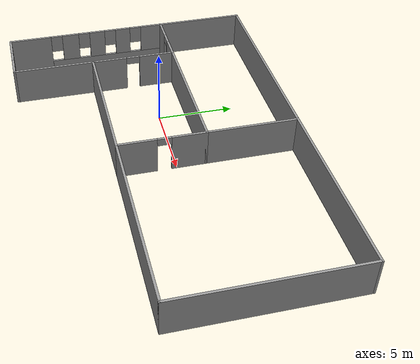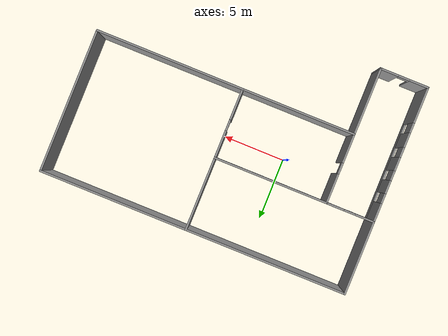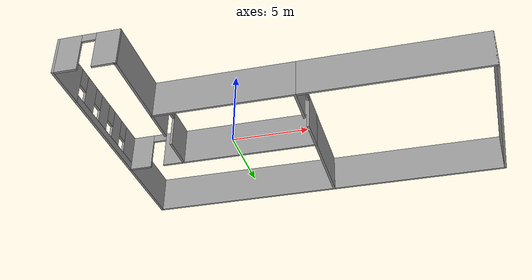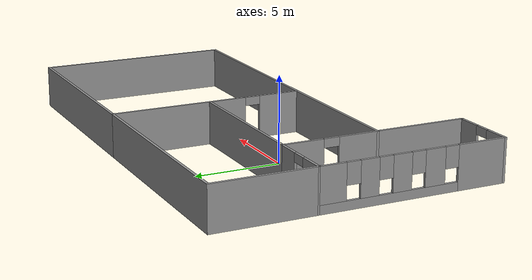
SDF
<?xml version='1.0'?>
<sdf version='1.7'>
  <model name='house'>
    <pose>4.49713 -0.687217 0 0 -0 0</pose>
    <link name='Wall_0'>
      <pose>-8.55 -0.25 0 0 -0 1.5708</pose>
      <visual name='Wall_0_Visual_0'>
        <pose>-1.67204 0 1.25 0 -0 0</pose>
        <geometry>
          <box>
            <size>2.40592 0.15 2.5</size>
          </box>
        </geometry>
        <material>
          <script>
            <uri>file://media/materials/scripts/gazebo.material</uri>
            <name>Gazebo/Grey</name>
          </script>
          <ambient>1 1 1 1</ambient>
        </material>
        <meta>
          <layer>0</layer>
        </meta>
      </visual>
      <collision name='Wall_0_Collision_0'>
        <geometry>
          <box>
            <size>2.40592 0.15 2.5</size>
          </box>
        </geometry>
        <pose>-1.67204 0 1.25 0 -0 0</pose>
      </collision>
      <visual name='Wall_0_Visual_1'>
        <pose>1.65296 0 1.25 0 -0 0</pose>
        <geometry>
          <box>
            <size>2.44408 0.15 2.5</size>
          </box>
        </geometry>
        <material>
          <script>
            <uri>file://media/materials/scripts/gazebo.material</uri>
            <name>Gazebo/Grey</name>
          </script>
          <ambient>1 1 1 1</ambient>
        </material>
        <meta>
          <layer>0</layer>
        </meta>
      </visual>
      <collision name='Wall_0_Collision_1'>
        <geometry>
          <box>
            <size>2.44408 0.15 2.5</size>
          </box>
        </geometry>
        <pose>1.65296 0 1.25 0 -0 0</pose>
      </collision>
      <visual name='Wall_0_Visual_2'>
        <pose>-0.01908 0 2.25 0 -0 0</pose>
        <geometry>
          <box>
            <size>0.9 0.15 0.5</size>
          </box>
        </geometry>
        <material>
          <script>
            <uri>file://media/materials/scripts/gazebo.material</uri>
            <name>Gazebo/Grey</name>
          </script>
          <ambient>1 1 1 1</ambient>
        </material>
        <meta>
          <layer>0</layer>
        </meta>
      </visual>
      <collision name='Wall_0_Collision_2'>
        <geometry>
          <box>
            <size>0.9 0.15 0.5</size>
          </box>
        </geometry>
        <pose>-0.01908 0 2.25 0 -0 0</pose>
      </collision>
    </link>
    <link name='Wall_1'>
      <collision name='Wall_1_Collision'>
        <geometry>
          <box>
            <size>9.25 0.15 2.5</size>
          </box>
        </geometry>
        <pose>0 0 1.25 0 -0 0</pose>
      </collision>
      <visual name='Wall_1_Visual'>
        <pose>0 0 1.25 0 -0 0</pose>
        <geometry>
          <box>
            <size>9.25 0.15 2.5</size>
          </box>
        </geometry>
        <material>
          <script>
            <uri>file://media/materials/scripts/gazebo.material</uri>
            <name>Gazebo/Grey</name>
          </script>
          <ambient>1 1 1 1</ambient>
        </material>
        <meta>
          <layer>0</layer>
        </meta>
      </visual>
      <pose>-4 2.55 0 0 -0 0</pose>
    </link>
    <link name='Wall_11'>
      <pose>-10.475 2.55 0 0 -0 3.14159</pose>
      <visual name='Wall_11_Visual_0'>
        <pose>-1.25059 0 1.25 0 -0 0</pose>
        <geometry>
          <box>
            <size>1.49882 0.15 2.5</size>
          </box>
        </geometry>
        <material>
          <script>
            <uri>file://media/materials/scripts/gazebo.material</uri>
            <name>Gazebo/Grey</name>
          </script>
          <ambient>1 1 1 1</ambient>
        </material>
        <meta>
          <layer>0</layer>
        </meta>
      </visual>
      <collision name='Wall_11_Collision_0'>
        <geometry>
          <box>
            <size>1.49882 0.15 2.5</size>
          </box>
        </geometry>
        <pose>-1.25059 0 1.25 0 -0 0</pose>
      </collision>
      <visual name='Wall_11_Visual_1'>
        <pose>1.19941 0 1.25 0 -0 0</pose>
        <geometry>
          <box>
            <size>1.60118 0.15 2.5</size>
          </box>
        </geometry>
        <material>
          <script>
            <uri>file://media/materials/scripts/gazebo.material</uri>
            <name>Gazebo/Grey</name>
          </script>
          <ambient>1 1 1 1</ambient>
        </material>
        <meta>
          <layer>0</layer>
        </meta>
      </visual>
      <collision name='Wall_11_Collision_1'>
        <geometry>
          <box>
            <size>1.60118 0.15 2.5</size>
          </box>
        </geometry>
        <pose>1.19941 0 1.25 0 -0 0</pose>
      </collision>
      <visual name='Wall_11_Visual_2'>
        <pose>-0.051178 0 2.25 0 -0 0</pose>
        <geometry>
          <box>
            <size>0.9 0.15 0.5</size>
          </box>
        </geometry>
        <material>
          <script>
            <uri>file://media/materials/scripts/gazebo.material</uri>
            <name>Gazebo/Grey</name>
          </script>
          <ambient>1 1 1 1</ambient>
        </material>
        <meta>
          <layer>0</layer>
        </meta>
      </visual>
      <collision name='Wall_11_Collision_2'>
        <geometry>
          <box>
            <size>0.9 0.15 0.5</size>
          </box>
        </geometry>
        <pose>-0.051178 0 2.25 0 -0 0</pose>
      </collision>
    </link>
    <link name='Wall_14'>
      <collision name='Wall_14_Collision'>
        <geometry>
          <box>
            <size>6 0.15 2.5</size>
          </box>
        </geometry>
        <pose>0 0 1.25 0 -0 0</pose>
      </collision>
      <visual name='Wall_14_Visual'>
        <pose>0 0 1.25 0 -0 0</pose>
        <geometry>
          <box>
            <size>6 0.15 2.5</size>
          </box>
        </geometry>
        <material>
          <script>
            <uri>file://media/materials/scripts/gazebo.material</uri>
            <name>Gazebo/Grey</name>
          </script>
          <ambient>1 1 1 1</ambient>
        </material>
        <meta>
          <layer>0</layer>
        </meta>
      </visual>
      <pose>-12.4 5.475 0 0 -0 1.5708</pose>
    </link>
    <link name='Wall_17'>
      <collision name='Wall_17_Collision'>
        <geometry>
          <box>
            <size>6 0.15 2.5</size>
          </box>
        </geometry>
        <pose>0 0 1.25 0 -0 0</pose>
      </collision>
      <visual name='Wall_17_Visual'>
        <pose>0 0 1.25 0 -0 0</pose>
        <geometry>
          <box>
            <size>6 0.15 2.5</size>
          </box>
        </geometry>
        <material>
          <script>
            <uri>file://media/materials/scripts/gazebo.material</uri>
            <name>Gazebo/Grey</name>
          </script>
          <ambient>1 1 1 1</ambient>
        </material>
        <meta>
          <layer>0</layer>
        </meta>
      </visual>
      <pose>0.55 5.475 0 0 -0 1.5708</pose>
    </link>
    <link name='Wall_18'>
      <collision name='Wall_18_Collision'>
        <geometry>
          <box>
            <size>13.1 0.15 2.5</size>
          </box>
        </geometry>
        <pose>0 0 1.25 0 -0 0</pose>
      </collision>
      <visual name='Wall_18_Visual'>
        <pose>0 0 1.25 0 -0 0</pose>
        <geometry>
          <box>
            <size>13.1 0.15 2.5</size>
          </box>
        </geometry>
        <material>
          <script>
            <uri>file://media/materials/scripts/gazebo.material</uri>
            <name>Gazebo/Grey</name>
          </script>
          <ambient>1 1 1 1</ambient>
        </material>
        <meta>
          <layer>0</layer>
        </meta>
      </visual>
      <pose>-5.925 8.4 0 0 -0 3.14159</pose>
    </link>
    <link name='Wall_2'>
      <pose>0.55 -0.25 0 0 -0 -1.5708</pose>
      <visual name='Wall_2_Visual_0'>
        <pose>-1.73443 0 1.25 0 -0 0</pose>
        <geometry>
          <box>
            <size>2.28113 0.15 2.5</size>
          </box>
        </geometry>
        <material>
          <script>
            <uri>file://media/materials/scripts/gazebo.material</uri>
            <name>Gazebo/Grey</name>
          </script>
          <ambient>1 1 1 1</ambient>
        </material>
        <meta>
          <layer>0</layer>
        </meta>
      </visual>
      <collision name='Wall_2_Collision_0'>
        <geometry>
          <box>
            <size>2.28113 0.15 2.5</size>
          </box>
        </geometry>
        <pose>-1.73443 0 1.25 0 -0 0</pose>
      </collision>
      <visual name='Wall_2_Visual_1'>
        <pose>1.59057 0 1.25 0 -0 0</pose>
        <geometry>
          <box>
            <size>2.56887 0.15 2.5</size>
          </box>
        </geometry>
        <material>
          <script>
            <uri>file://media/materials/scripts/gazebo.material</uri>
            <name>Gazebo/Grey</name>
          </script>
          <ambient>1 1 1 1</ambient>
        </material>
        <meta>
          <layer>0</layer>
        </meta>
      </visual>
      <collision name='Wall_2_Collision_1'>
        <geometry>
          <box>
            <size>2.56887 0.15 2.5</size>
          </box>
        </geometry>
        <pose>1.59057 0 1.25 0 -0 0</pose>
      </collision>
      <visual name='Wall_2_Visual_2'>
        <pose>-0.143869 0 2.25 0 -0 0</pose>
        <geometry>
          <box>
            <size>0.9 0.15 0.5</size>
          </box>
        </geometry>
        <material>
          <script>
            <uri>file://media/materials/scripts/gazebo.material</uri>
            <name>Gazebo/Grey</name>
          </script>
          <ambient>1 1 1 1</ambient>
        </material>
        <meta>
          <layer>0</layer>
        </meta>
      </visual>
      <collision name='Wall_2_Collision_2'>
        <geometry>
          <box>
            <size>0.9 0.15 0.5</size>
          </box>
        </geometry>
        <pose>-0.143869 0 2.25 0 -0 0</pose>
      </collision>
    </link>
    <link name='Wall_20'>
      <collision name='Wall_20_Collision'>
        <geometry>
          <box>
            <size>12 0.15 2.5</size>
          </box>
        </geometry>
        <pose>0 0 1.25 0 -0 0</pose>
      </collision>
      <visual name='Wall_20_Visual'>
        <pose>0 0 1.25 0 -0 0</pose>
        <geometry>
          <box>
            <size>12 0.15 2.5</size>
          </box>
        </geometry>
        <material>
          <script>
            <uri>file://media/materials/scripts/gazebo.material</uri>
            <name>Gazebo/Grey</name>
          </script>
          <ambient>1 1 1 1</ambient>
        </material>
        <meta>
          <layer>0</layer>
        </meta>
      </visual>
      <pose>6.475 8.4 0 0 -0 0</pose>
    </link>
    <link name='Wall_23'>
      <collision name='Wall_23_Collision'>
        <geometry>
          <box>
            <size>12 0.15 2.5</size>
          </box>
        </geometry>
        <pose>0 0 1.25 0 -0 0</pose>
      </collision>
      <visual name='Wall_23_Visual'>
        <pose>0 0 1.25 0 -0 0</pose>
        <geometry>
          <box>
            <size>12 0.15 2.5</size>
          </box>
        </geometry>
        <material>
          <script>
            <uri>file://media/materials/scripts/gazebo.material</uri>
            <name>Gazebo/Grey</name>
          </script>
          <ambient>1 1 1 1</ambient>
        </material>
        <meta>
          <layer>0</layer>
        </meta>
      </visual>
      <pose>6.475 -3.05 0 0 -0 0</pose>
    </link>
    <link name='Wall_24'>
      <collision name='Wall_24_Collision'>
        <geometry>
          <box>
            <size>11.5 0.15 2.5</size>
          </box>
        </geometry>
        <pose>0 0 1.25 0 -0 0</pose>
      </collision>
      <visual name='Wall_24_Visual'>
        <pose>0 0 1.25 0 -0 0</pose>
        <geometry>
          <box>
            <size>11.5 0.15 2.5</size>
          </box>
        </geometry>
        <material>
          <script>
            <uri>file://media/materials/scripts/gazebo.material</uri>
            <name>Gazebo/Grey</name>
          </script>
          <ambient>1 1 1 1</ambient>
        </material>
        <meta>
          <layer>0</layer>
        </meta>
      </visual>
      <pose>12.4 2.625 0 0 -0 1.5708</pose>
    </link>
    <link name='Wall_3'>
      <collision name='Wall_3_Collision'>
        <geometry>
          <box>
            <size>9.25 0.15 2.5</size>
          </box>
        </geometry>
        <pose>0 0 1.25 0 -0 0</pose>
      </collision>
      <visual name='Wall_3_Visual'>
        <pose>0 0 1.25 0 -0 0</pose>
        <geometry>
          <box>
            <size>9.25 0.15 2.5</size>
          </box>
        </geometry>
        <material>
          <script>
            <uri>file://media/materials/scripts/gazebo.material</uri>
            <name>Gazebo/Grey</name>
          </script>
          <ambient>1 1 1 1</ambient>
        </material>
        <meta>
          <layer>0</layer>
        </meta>
      </visual>
      <pose>-4 -3.05 0 0 -0 3.14159</pose>
    </link>
    <link name='Wall_6'>
      <collision name='Wall_6_Collision'>
        <geometry>
          <box>
            <size>5.5 0.15 2.5</size>
          </box>
        </geometry>
        <pose>0 0 1.25 0 -0 0</pose>
      </collision>
      <visual name='Wall_6_Visual'>
        <pose>0 0 1.25 0 -0 0</pose>
        <geometry>
          <box>
            <size>5.5 0.15 2.5</size>
          </box>
        </geometry>
        <material>
          <script>
            <uri>file://media/materials/scripts/gazebo.material</uri>
            <name>Gazebo/Grey</name>
          </script>
          <ambient>1 1 1 1</ambient>
        </material>
        <meta>
          <layer>0</layer>
        </meta>
      </visual>
      <pose>-8.55 -5.725 0 0 -0 -1.5708</pose>
    </link>
    <link name='Wall_7'>
      <pose>-10.475 -8.4 0 0 -0 3.14159</pose>
      <visual name='Wall_7_Visual_0'>
        <pose>-1.23824 0 1.25 0 -0 0</pose>
        <geometry>
          <box>
            <size>1.52352 0.15 2.5</size>
          </box>
        </geometry>
        <material>
          <script>
            <uri>file://media/materials/scripts/gazebo.material</uri>
            <name>Gazebo/Grey</name>
          </script>
          <ambient>1 1 1 1</ambient>
        </material>
        <meta>
          <layer>0</layer>
        </meta>
      </visual>
      <collision name='Wall_7_Collision_0'>
        <geometry>
          <box>
            <size>1.52352 0.15 2.5</size>
          </box>
        </geometry>
        <pose>-1.23824 0 1.25 0 -0 0</pose>
      </collision>
      <visual name='Wall_7_Visual_1'>
        <pose>1.21176 0 1.25 0 -0 0</pose>
        <geometry>
          <box>
            <size>1.57648 0.15 2.5</size>
          </box>
        </geometry>
        <material>
          <script>
            <uri>file://media/materials/scripts/gazebo.material</uri>
            <name>Gazebo/Grey</name>
          </script>
          <ambient>1 1 1 1</ambient>
        </material>
        <meta>
          <layer>0</layer>
        </meta>
      </visual>
      <collision name='Wall_7_Collision_1'>
        <geometry>
          <box>
            <size>1.57648 0.15 2.5</size>
          </box>
        </geometry>
        <pose>1.21176 0 1.25 0 -0 0</pose>
      </collision>
      <visual name='Wall_7_Visual_2'>
        <pose>-0.026484 0 2.25 0 -0 0</pose>
        <geometry>
          <box>
            <size>0.9 0.15 0.5</size>
          </box>
        </geometry>
        <material>
          <script>
            <uri>file://media/materials/scripts/gazebo.material</uri>
            <name>Gazebo/Grey</name>
          </script>
          <ambient>1 1 1 1</ambient>
        </material>
        <meta>
          <layer>0</layer>
        </meta>
      </visual>
      <collision name='Wall_7_Collision_2'>
        <geometry>
          <box>
            <size>0.9 0.15 0.5</size>
          </box>
        </geometry>
        <pose>-0.026484 0 2.25 0 -0 0</pose>
      </collision>
    </link>
    <link name='Wall_9'>
      <pose>-12.4 -2.975 0 0 -0 1.5708</pose>
      <visual name='Wall_9_Visual_0'>
        <pose>-4.02416 0 1.25 0 -0 0</pose>
        <geometry>
          <box>
            <size>2.95168 0.15 2.5</size>
          </box>
        </geometry>
        <material>
          <script>
            <uri>file://media/materials/scripts/gazebo.material</uri>
            <name>Gazebo/Grey</name>
          </script>
          <ambient>1 1 1 1</ambient>
        </material>
        <meta>
          <layer>0</layer>
        </meta>
      </visual>
      <collision name='Wall_9_Collision_0'>
        <geometry>
          <box>
            <size>2.95168 0.15 2.5</size>
          </box>
        </geometry>
        <pose>-4.02416 0 1.25 0 -0 0</pose>
      </collision>
      <visual name='Wall_9_Visual_1'>
        <pose>1.47584 0 0.25 0 -0 0</pose>
        <geometry>
          <box>
            <size>8.04832 0.15 0.5</size>
          </box>
        </geometry>
        <material>
          <script>
            <uri>file://media/materials/scripts/gazebo.material</uri>
            <name>Gazebo/Grey</name>
          </script>
          <ambient>1 1 1 1</ambient>
        </material>
        <meta>
          <layer>0</layer>
        </meta>
      </visual>
      <collision name='Wall_9_Collision_1'>
        <geometry>
          <box>
            <size>8.04832 0.15 0.5</size>
          </box>
        </geometry>
        <pose>1.47584 0 0.25 0 -0 0</pose>
      </collision>
      <visual name='Wall_9_Visual_2'>
        <pose>-1.15299 0 1.5 0 -0 0</pose>
        <geometry>
          <box>
            <size>1.19065 0.15 2</size>
          </box>
        </geometry>
        <material>
          <script>
            <uri>file://media/materials/scripts/gazebo.material</uri>
            <name>Gazebo/Grey</name>
          </script>
          <ambient>1 1 1 1</ambient>
        </material>
        <meta>
          <layer>0</layer>
        </meta>
      </visual>
      <collision name='Wall_9_Collision_2'>
        <geometry>
          <box>
            <size>1.19065 0.15 2</size>
          </box>
        </geometry>
        <pose>-1.15299 0 1.5 0 -0 0</pose>
      </collision>
      <visual name='Wall_9_Visual_3'>
        <pose>0.792157 0 1.5 0 -0 0</pose>
        <geometry>
          <box>
            <size>1.09965 0.15 2</size>
          </box>
        </geometry>
        <material>
          <script>
            <uri>file://media/materials/scripts/gazebo.material</uri>
            <name>Gazebo/Grey</name>
          </script>
          <ambient>1 1 1 1</ambient>
        </material>
        <meta>
          <layer>0</layer>
        </meta>
      </visual>
      <collision name='Wall_9_Collision_3'>
        <geometry>
          <box>
            <size>1.09965 0.15 2</size>
          </box>
        </geometry>
        <pose>0.792157 0 1.5 0 -0 0</pose>
      </collision>
      <visual name='Wall_9_Visual_4'>
        <pose>2.67571 0 1.5 0 -0 0</pose>
        <geometry>
          <box>
            <size>1.06745 0.15 2</size>
          </box>
        </geometry>
        <material>
          <script>
            <uri>file://media/materials/scripts/gazebo.material</uri>
            <name>Gazebo/Grey</name>
          </script>
          <ambient>1 1 1 1</ambient>
        </material>
        <meta>
          <layer>0</layer>
        </meta>
      </visual>
      <collision name='Wall_9_Collision_4'>
        <geometry>
          <box>
            <size>1.06745 0.15 2</size>
          </box>
        </geometry>
        <pose>2.67571 0 1.5 0 -0 0</pose>
      </collision>
      <visual name='Wall_9_Visual_5'>
        <pose>4.75472 0 1.5 0 -0 0</pose>
        <geometry>
          <box>
            <size>1.49057 0.15 2</size>
          </box>
        </geometry>
        <material>
          <script>
            <uri>file://media/materials/scripts/gazebo.material</uri>
            <name>Gazebo/Grey</name>
          </script>
          <ambient>1 1 1 1</ambient>
        </material>
        <meta>
          <layer>0</layer>
        </meta>
      </visual>
      <collision name='Wall_9_Collision_5'>
        <geometry>
          <box>
            <size>1.49057 0.15 2</size>
          </box>
        </geometry>
        <pose>4.75472 0 1.5 0 -0 0</pose>
      </collision>
      <visual name='Wall_9_Visual_6'>
        <pose>-2.14832 0 1.9 0 -0 0</pose>
        <geometry>
          <box>
            <size>0.8 0.15 1.2</size>
          </box>
        </geometry>
        <material>
          <script>
            <uri>file://media/materials/scripts/gazebo.material</uri>
            <name>Gazebo/Grey</name>
          </script>
          <ambient>1 1 1 1</ambient>
        </material>
        <meta>
          <layer>0</layer>
        </meta>
      </visual>
      <collision name='Wall_9_Collision_6'>
        <geometry>
          <box>
            <size>0.8 0.15 1.2</size>
          </box>
        </geometry>
        <pose>-2.14832 0 1.9 0 -0 0</pose>
      </collision>
      <visual name='Wall_9_Visual_7'>
        <pose>-0.15767 0 1.9 0 -0 0</pose>
        <geometry>
          <box>
            <size>0.8 0.15 1.2</size>
          </box>
        </geometry>
        <material>
          <script>
            <uri>file://media/materials/scripts/gazebo.material</uri>
            <name>Gazebo/Grey</name>
          </script>
          <ambient>1 1 1 1</ambient>
        </material>
        <meta>
          <layer>0</layer>
        </meta>
      </visual>
      <collision name='Wall_9_Collision_7'>
        <geometry>
          <box>
            <size>0.8 0.15 1.2</size>
          </box>
        </geometry>
        <pose>-0.15767 0 1.9 0 -0 0</pose>
      </collision>
      <visual name='Wall_9_Visual_8'>
        <pose>1.74198 0 1.9 0 -0 0</pose>
        <geometry>
          <box>
            <size>0.8 0.15 1.2</size>
          </box>
        </geometry>
        <material>
          <script>
            <uri>file://media/materials/scripts/gazebo.material</uri>
            <name>Gazebo/Grey</name>
          </script>
          <ambient>1 1 1 1</ambient>
        </material>
        <meta>
          <layer>0</layer>
        </meta>
      </visual>
      <collision name='Wall_9_Collision_8'>
        <geometry>
          <box>
            <size>0.8 0.15 1.2</size>
          </box>
        </geometry>
        <pose>1.74198 0 1.9 0 -0 0</pose>
      </collision>
      <visual name='Wall_9_Visual_9'>
        <pose>3.60943 0 1.9 0 -0 0</pose>
        <geometry>
          <box>
            <size>0.8 0.15 1.2</size>
          </box>
        </geometry>
        <material>
          <script>
            <uri>file://media/materials/scripts/gazebo.material</uri>
            <name>Gazebo/Grey</name>
          </script>
          <ambient>1 1 1 1</ambient>
        </material>
        <meta>
          <layer>0</layer>
        </meta>
      </visual>
      <collision name='Wall_9_Collision_9'>
        <geometry>
          <box>
            <size>0.8 0.15 1.2</size>
          </box>
        </geometry>
        <pose>3.60943 0 1.9 0 -0 0</pose>
      </collision>
    </link>
    <static>1</static>
  </model>
</sdf>
